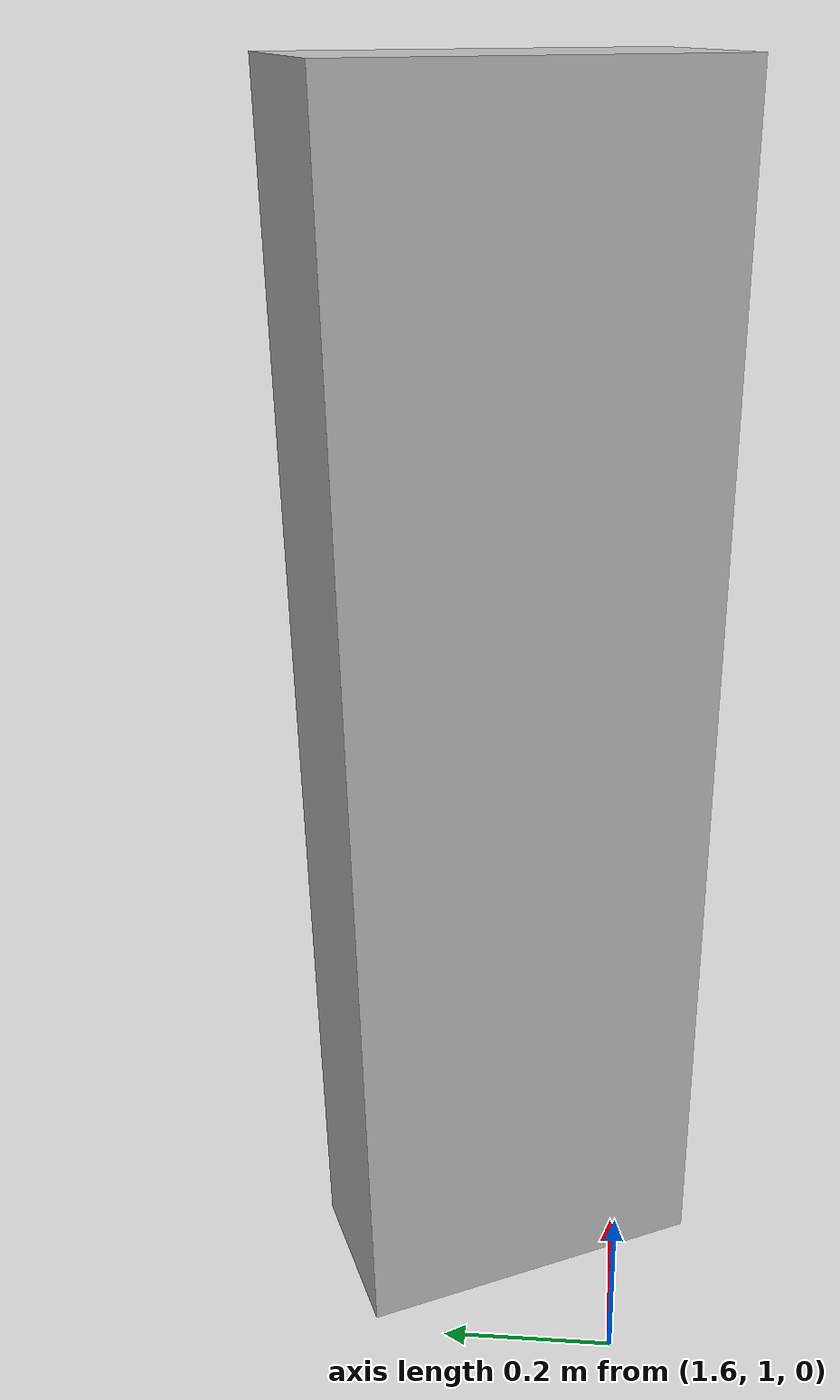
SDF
<?xml version='1.0'?>
  <sdf version='1.6'>
    <model name="Object5">
      <static>false</static>

      <link name='cube'>
        <pose>1.8 1.14 0.7 0 0 0.45</pose>

        <collision name='collision'>
          <geometry>
            <box>
              <size>.2 .42 1.4</size>
            </box>
          </geometry>
        </collision>

        <surface>
          <friction>
            <ode>
              <mu>1</mu>
              <mu2>1</mu2>
              <slip1>1.0</slip1>
              <slip2>1.0</slip2>
            </ode>
          </friction>
        </surface>

        <visual name='visual'>
          <geometry>
            <box>
              <size>.2 .42 1.4</size>
            </box>
          </geometry>
        </visual>
      </link>

    </model>
  </sdf>
